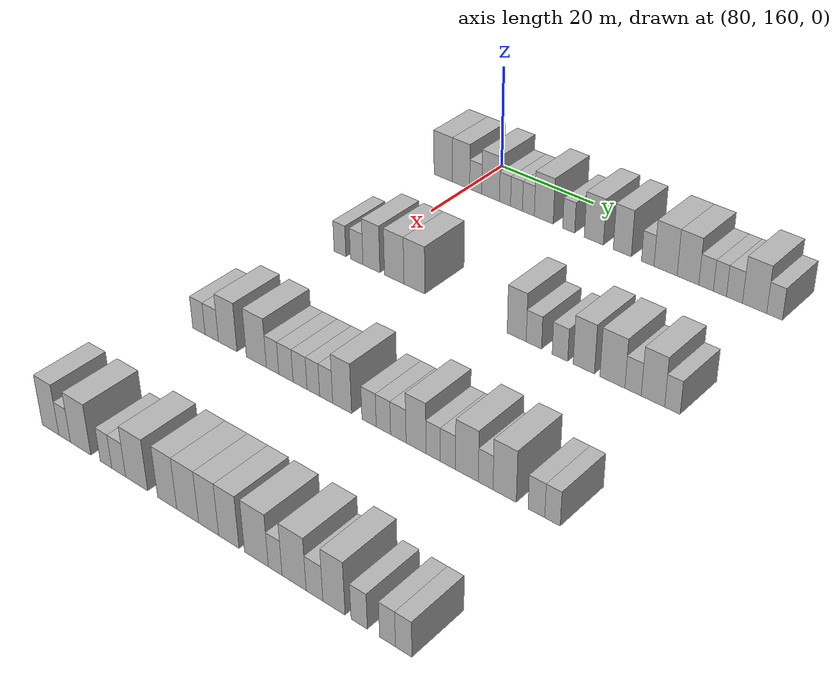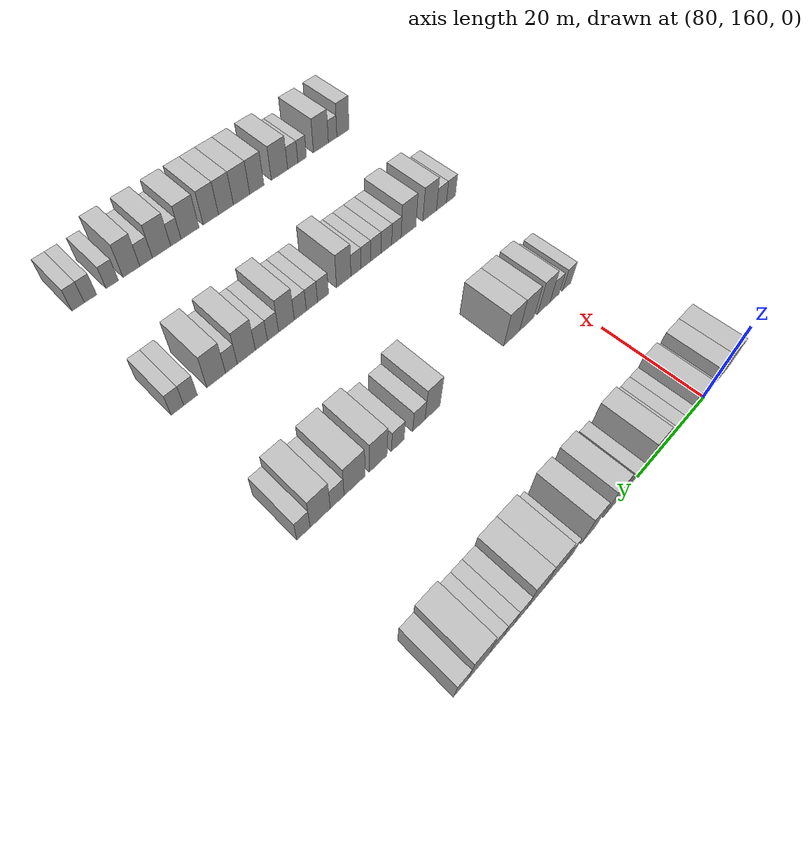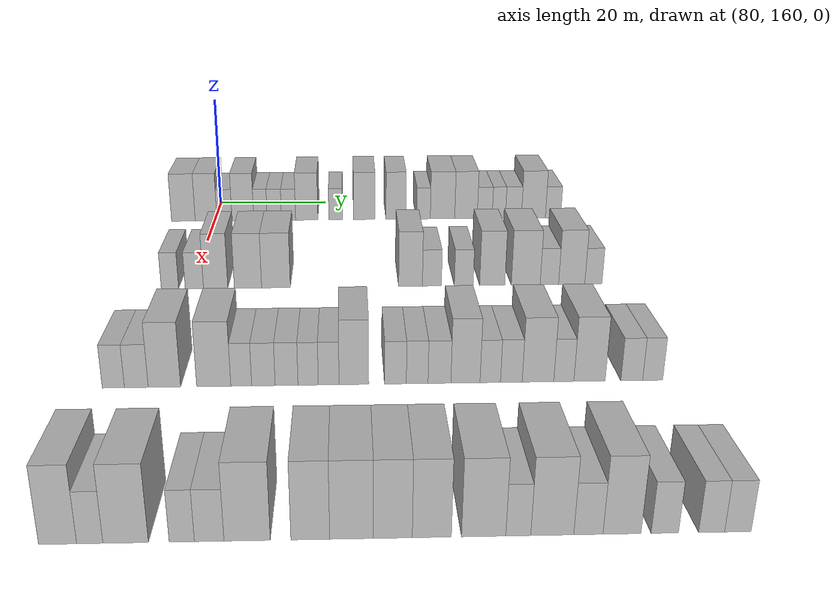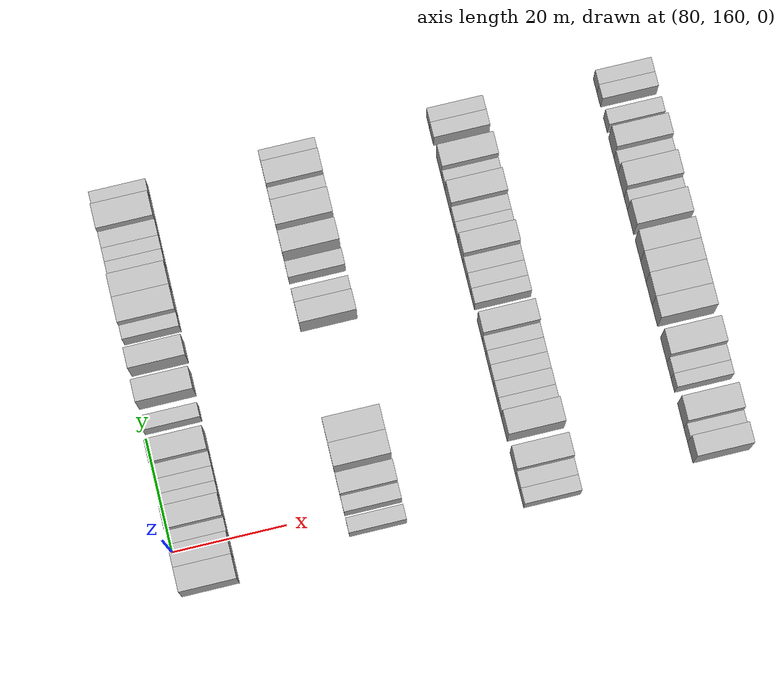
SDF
<sdf version="1.6">
 <world name="default">
  <model name="building_597">
   <static>1</static>
   <pose>85.0000 154.3414 0 0.000000 0.000000 0.000000</pose>
   <link name="link">
    <pose>0 0 4.50 0 0 0</pose>
    <collision name="collision"><geometry><box><size>10.0000 4.2786 9.0000</size></box></geometry></collision>
    <visual name="visual">
     <cast_shadows>0</cast_shadows>
     <geometry><box><size>10.0000 4.2786 9.0000</size></box></geometry>
     <material>
      <script>
       <uri>model://HANNAS_wall/materials/scripts</uri>
       <uri>model://HANNAS_wall/materials/textures</uri>
       <name>vrc/HANNAS_wall</name>
      </script>
     </material>
    </visual>
   </link>
  </model>
  <model name="building_598">
   <static>1</static>
   <pose>85.0000 158.4468 0 0.000000 0.000000 0.000000</pose>
   <link name="link">
    <pose>0 0 4.50 0 0 0</pose>
    <collision name="collision"><geometry><box><size>10.0000 3.9324 9.0000</size></box></geometry></collision>
    <visual name="visual">
     <cast_shadows>0</cast_shadows>
     <geometry><box><size>10.0000 3.9324 9.0000</size></box></geometry>
     <material>
      <script>
       <uri>model://HANNAS_wall/materials/scripts</uri>
       <uri>model://HANNAS_wall/materials/textures</uri>
       <name>vrc/HANNAS_wall</name>
      </script>
     </material>
    </visual>
   </link>
  </model>
  <model name="building_599">
   <static>1</static>
   <pose>85.0000 161.7766 0 0.000000 0.000000 0.000000</pose>
   <link name="link">
    <pose>0 0 3.00 0 0 0</pose>
    <collision name="collision"><geometry><box><size>10.0000 2.7272 6.0000</size></box></geometry></collision>
    <visual name="visual">
     <cast_shadows>0</cast_shadows>
     <geometry><box><size>10.0000 2.7272 6.0000</size></box></geometry>
     <material>
      <script>
       <uri>model://HANNAS_wall/materials/scripts</uri>
       <uri>model://HANNAS_wall/materials/textures</uri>
       <name>vrc/HANNAS_wall</name>
      </script>
     </material>
    </visual>
   </link>
  </model>
  <model name="building_600">
   <static>1</static>
   <pose>85.0000 165.1056 0 0.000000 0.000000 0.000000</pose>
   <link name="link">
    <pose>0 0 4.50 0 0 0</pose>
    <collision name="collision"><geometry><box><size>10.0000 3.9307 9.0000</size></box></geometry></collision>
    <visual name="visual">
     <cast_shadows>0</cast_shadows>
     <geometry><box><size>10.0000 3.9307 9.0000</size></box></geometry>
     <material>
      <script>
       <uri>model://HANNAS_wall/materials/scripts</uri>
       <uri>model://HANNAS_wall/materials/textures</uri>
       <name>vrc/HANNAS_wall</name>
      </script>
     </material>
    </visual>
   </link>
  </model>
  <model name="building_601">
   <static>1</static>
   <pose>85.0000 168.2970 0 0.000000 0.000000 0.000000</pose>
   <link name="link">
    <pose>0 0 3.00 0 0 0</pose>
    <collision name="collision"><geometry><box><size>10.0000 2.4523 6.0000</size></box></geometry></collision>
    <visual name="visual">
     <cast_shadows>0</cast_shadows>
     <geometry><box><size>10.0000 2.4523 6.0000</size></box></geometry>
     <material>
      <script>
       <uri>model://HANNAS_wall/materials/scripts</uri>
       <uri>model://HANNAS_wall/materials/textures</uri>
       <name>vrc/HANNAS_wall</name>
      </script>
     </material>
    </visual>
   </link>
  </model>
  <model name="building_602">
   <static>1</static>
   <pose>85.0000 170.8215 0 0.000000 0.000000 0.000000</pose>
   <link name="link">
    <pose>0 0 3.00 0 0 0</pose>
    <collision name="collision"><geometry><box><size>10.0000 2.5967 6.0000</size></box></geometry></collision>
    <visual name="visual">
     <cast_shadows>0</cast_shadows>
     <geometry><box><size>10.0000 2.5967 6.0000</size></box></geometry>
     <material>
      <script>
       <uri>model://HANNAS_wall/materials/scripts</uri>
       <uri>model://HANNAS_wall/materials/textures</uri>
       <name>vrc/HANNAS_wall</name>
      </script>
     </material>
    </visual>
   </link>
  </model>
  <model name="building_603">
   <static>1</static>
   <pose>85.0000 173.4061 0 0.000000 0.000000 0.000000</pose>
   <link name="link">
    <pose>0 0 3.00 0 0 0</pose>
    <collision name="collision"><geometry><box><size>10.0000 2.5726 6.0000</size></box></geometry></collision>
    <visual name="visual">
     <cast_shadows>0</cast_shadows>
     <geometry><box><size>10.0000 2.5726 6.0000</size></box></geometry>
     <material>
      <script>
       <uri>model://HANNAS_wall/materials/scripts</uri>
       <uri>model://HANNAS_wall/materials/textures</uri>
       <name>vrc/HANNAS_wall</name>
      </script>
     </material>
    </visual>
   </link>
  </model>
  <model name="building_604">
   <static>1</static>
   <pose>85.0000 176.7185 0 0.000000 0.000000 0.000000</pose>
   <link name="link">
    <pose>0 0 4.50 0 0 0</pose>
    <collision name="collision"><geometry><box><size>10.0000 4.0522 9.0000</size></box></geometry></collision>
    <visual name="visual">
     <cast_shadows>0</cast_shadows>
     <geometry><box><size>10.0000 4.0522 9.0000</size></box></geometry>
     <material>
      <script>
       <uri>model://HANNAS_wall/materials/scripts</uri>
       <uri>model://HANNAS_wall/materials/textures</uri>
       <name>vrc/HANNAS_wall</name>
      </script>
     </material>
    </visual>
   </link>
  </model>
  <model name="building_605">
   <static>1</static>
   <pose>85.0000 181.9972 0 0.000000 0.000000 0.000000</pose>
   <link name="link">
    <pose>0 0 3.00 0 0 0</pose>
    <collision name="collision"><geometry><box><size>10.0000 2.5053 6.0000</size></box></geometry></collision>
    <visual name="visual">
     <cast_shadows>0</cast_shadows>
     <geometry><box><size>10.0000 2.5053 6.0000</size></box></geometry>
     <material>
      <script>
       <uri>model://HANNAS_wall/materials/scripts</uri>
       <uri>model://HANNAS_wall/materials/textures</uri>
       <name>vrc/HANNAS_wall</name>
      </script>
     </material>
    </visual>
   </link>
  </model>
  <model name="building_606">
   <static>1</static>
   <pose>85.0000 187.2097 0 0.000000 0.000000 0.000000</pose>
   <link name="link">
    <pose>0 0 4.50 0 0 0</pose>
    <collision name="collision"><geometry><box><size>10.0000 3.9197 9.0000</size></box></geometry></collision>
    <visual name="visual">
     <cast_shadows>0</cast_shadows>
     <geometry><box><size>10.0000 3.9197 9.0000</size></box></geometry>
     <material>
      <script>
       <uri>model://HANNAS_wall/materials/scripts</uri>
       <uri>model://HANNAS_wall/materials/textures</uri>
       <name>vrc/HANNAS_wall</name>
      </script>
     </material>
    </visual>
   </link>
  </model>
  <model name="building_607">
   <static>1</static>
   <pose>85.0000 192.9871 0 0.000000 0.000000 0.000000</pose>
   <link name="link">
    <pose>0 0 4.50 0 0 0</pose>
    <collision name="collision"><geometry><box><size>10.0000 3.6351 9.0000</size></box></geometry></collision>
    <visual name="visual">
     <cast_shadows>0</cast_shadows>
     <geometry><box><size>10.0000 3.6351 9.0000</size></box></geometry>
     <material>
      <script>
       <uri>model://HANNAS_wall/materials/scripts</uri>
       <uri>model://HANNAS_wall/materials/textures</uri>
       <name>vrc/HANNAS_wall</name>
      </script>
     </material>
    </visual>
   </link>
  </model>
  <model name="building_608">
   <static>1</static>
   <pose>85.0000 198.0442 0 0.000000 0.000000 0.000000</pose>
   <link name="link">
    <pose>0 0 3.00 0 0 0</pose>
    <collision name="collision"><geometry><box><size>10.0000 2.4791 6.0000</size></box></geometry></collision>
    <visual name="visual">
     <cast_shadows>0</cast_shadows>
     <geometry><box><size>10.0000 2.4791 6.0000</size></box></geometry>
     <material>
      <script>
       <uri>model://HANNAS_wall/materials/scripts</uri>
       <uri>model://HANNAS_wall/materials/textures</uri>
       <name>vrc/HANNAS_wall</name>
      </script>
     </material>
    </visual>
   </link>
  </model>
  <model name="building_609">
   <static>1</static>
   <pose>85.0000 201.5215 0 0.000000 0.000000 0.000000</pose>
   <link name="link">
    <pose>0 0 4.50 0 0 0</pose>
    <collision name="collision"><geometry><box><size>10.0000 4.4755 9.0000</size></box></geometry></collision>
    <visual name="visual">
     <cast_shadows>0</cast_shadows>
     <geometry><box><size>10.0000 4.4755 9.0000</size></box></geometry>
     <material>
      <script>
       <uri>model://HANNAS_wall/materials/scripts</uri>
       <uri>model://HANNAS_wall/materials/textures</uri>
       <name>vrc/HANNAS_wall</name>
      </script>
     </material>
    </visual>
   </link>
  </model>
  <model name="building_610">
   <static>1</static>
   <pose>85.0000 205.8297 0 0.000000 0.000000 0.000000</pose>
   <link name="link">
    <pose>0 0 4.50 0 0 0</pose>
    <collision name="collision"><geometry><box><size>10.0000 4.1408 9.0000</size></box></geometry></collision>
    <visual name="visual">
     <cast_shadows>0</cast_shadows>
     <geometry><box><size>10.0000 4.1408 9.0000</size></box></geometry>
     <material>
      <script>
       <uri>model://HANNAS_wall/materials/scripts</uri>
       <uri>model://HANNAS_wall/materials/textures</uri>
       <name>vrc/HANNAS_wall</name>
      </script>
     </material>
    </visual>
   </link>
  </model>
  <model name="building_611">
   <static>1</static>
   <pose>85.0000 209.2731 0 0.000000 0.000000 0.000000</pose>
   <link name="link">
    <pose>0 0 3.00 0 0 0</pose>
    <collision name="collision"><geometry><box><size>10.0000 2.7460 6.0000</size></box></geometry></collision>
    <visual name="visual">
     <cast_shadows>0</cast_shadows>
     <geometry><box><size>10.0000 2.7460 6.0000</size></box></geometry>
     <material>
      <script>
       <uri>model://HANNAS_wall/materials/scripts</uri>
       <uri>model://HANNAS_wall/materials/textures</uri>
       <name>vrc/HANNAS_wall</name>
      </script>
     </material>
    </visual>
   </link>
  </model>
  <model name="building_612">
   <static>1</static>
   <pose>85.0000 211.8647 0 0.000000 0.000000 0.000000</pose>
   <link name="link">
    <pose>0 0 3.00 0 0 0</pose>
    <collision name="collision"><geometry><box><size>10.0000 2.4372 6.0000</size></box></geometry></collision>
    <visual name="visual">
     <cast_shadows>0</cast_shadows>
     <geometry><box><size>10.0000 2.4372 6.0000</size></box></geometry>
     <material>
      <script>
       <uri>model://HANNAS_wall/materials/scripts</uri>
       <uri>model://HANNAS_wall/materials/textures</uri>
       <name>vrc/HANNAS_wall</name>
      </script>
     </material>
    </visual>
   </link>
  </model>
  <model name="building_613">
   <static>1</static>
   <pose>85.0000 214.5510 0 0.000000 0.000000 0.000000</pose>
   <link name="link">
    <pose>0 0 3.00 0 0 0</pose>
    <collision name="collision"><geometry><box><size>10.0000 2.9353 6.0000</size></box></geometry></collision>
    <visual name="visual">
     <cast_shadows>0</cast_shadows>
     <geometry><box><size>10.0000 2.9353 6.0000</size></box></geometry>
     <material>
      <script>
       <uri>model://HANNAS_wall/materials/scripts</uri>
       <uri>model://HANNAS_wall/materials/textures</uri>
       <name>vrc/HANNAS_wall</name>
      </script>
     </material>
    </visual>
   </link>
  </model>
  <model name="building_614">
   <static>1</static>
   <pose>85.0000 218.2281 0 0.000000 0.000000 0.000000</pose>
   <link name="link">
    <pose>0 0 4.50 0 0 0</pose>
    <collision name="collision"><geometry><box><size>10.0000 4.4190 9.0000</size></box></geometry></collision>
    <visual name="visual">
     <cast_shadows>0</cast_shadows>
     <geometry><box><size>10.0000 4.4190 9.0000</size></box></geometry>
     <material>
      <script>
       <uri>model://HANNAS_wall/materials/scripts</uri>
       <uri>model://HANNAS_wall/materials/textures</uri>
       <name>vrc/HANNAS_wall</name>
      </script>
     </material>
    </visual>
   </link>
  </model>
  <model name="building_615">
   <static>1</static>
   <pose>85.0000 221.8478 0 0.000000 0.000000 0.000000</pose>
   <link name="link">
    <pose>0 0 3.00 0 0 0</pose>
    <collision name="collision"><geometry><box><size>10.0000 2.8203 6.0000</size></box></geometry></collision>
    <visual name="visual">
     <cast_shadows>0</cast_shadows>
     <geometry><box><size>10.0000 2.8203 6.0000</size></box></geometry>
     <material>
      <script>
       <uri>model://HANNAS_wall/materials/scripts</uri>
       <uri>model://HANNAS_wall/materials/textures</uri>
       <name>vrc/HANNAS_wall</name>
      </script>
     </material>
    </visual>
   </link>
  </model>
  <model name="building_819">
   <static>1</static>
   <pose>115.0000 156.8340 0 0.000000 0.000000 0.000000</pose>
   <link name="link">
    <pose>0 0 3.00 0 0 0</pose>
    <collision name="collision"><geometry><box><size>10.0000 2.6521 6.0000</size></box></geometry></collision>
    <visual name="visual">
     <cast_shadows>0</cast_shadows>
     <geometry><box><size>10.0000 2.6521 6.0000</size></box></geometry>
     <material>
      <script>
       <uri>model://HANNAS_wall/materials/scripts</uri>
       <uri>model://HANNAS_wall/materials/textures</uri>
       <name>vrc/HANNAS_wall</name>
      </script>
     </material>
    </visual>
   </link>
  </model>
  <model name="building_820">
   <static>1</static>
   <pose>115.0000 160.5585 0 0.000000 0.000000 0.000000</pose>
   <link name="link">
    <pose>0 0 3.00 0 0 0</pose>
    <collision name="collision"><geometry><box><size>10.0000 2.7969 6.0000</size></box></geometry></collision>
    <visual name="visual">
     <cast_shadows>0</cast_shadows>
     <geometry><box><size>10.0000 2.7969 6.0000</size></box></geometry>
     <material>
      <script>
       <uri>model://HANNAS_wall/materials/scripts</uri>
       <uri>model://HANNAS_wall/materials/textures</uri>
       <name>vrc/HANNAS_wall</name>
      </script>
     </material>
    </visual>
   </link>
  </model>
  <model name="building_821">
   <static>1</static>
   <pose>115.0000 163.8194 0 0.000000 0.000000 0.000000</pose>
   <link name="link">
    <pose>0 0 4.50 0 0 0</pose>
    <collision name="collision"><geometry><box><size>10.0000 3.7249 9.0000</size></box></geometry></collision>
    <visual name="visual">
     <cast_shadows>0</cast_shadows>
     <geometry><box><size>10.0000 3.7249 9.0000</size></box></geometry>
     <material>
      <script>
       <uri>model://HANNAS_wall/materials/scripts</uri>
       <uri>model://HANNAS_wall/materials/textures</uri>
       <name>vrc/HANNAS_wall</name>
      </script>
     </material>
    </visual>
   </link>
  </model>
  <model name="building_822">
   <static>1</static>
   <pose>115.0000 168.7721 0 0.000000 0.000000 0.000000</pose>
   <link name="link">
    <pose>0 0 4.50 0 0 0</pose>
    <collision name="collision"><geometry><box><size>10.0000 4.1805 9.0000</size></box></geometry></collision>
    <visual name="visual">
     <cast_shadows>0</cast_shadows>
     <geometry><box><size>10.0000 4.1805 9.0000</size></box></geometry>
     <material>
      <script>
       <uri>model://HANNAS_wall/materials/scripts</uri>
       <uri>model://HANNAS_wall/materials/textures</uri>
       <name>vrc/HANNAS_wall</name>
      </script>
     </material>
    </visual>
   </link>
  </model>
  <model name="building_823">
   <static>1</static>
   <pose>115.0000 173.0686 0 0.000000 0.000000 0.000000</pose>
   <link name="link">
    <pose>0 0 4.50 0 0 0</pose>
    <collision name="collision"><geometry><box><size>10.0000 4.4125 9.0000</size></box></geometry></collision>
    <visual name="visual">
     <cast_shadows>0</cast_shadows>
     <geometry><box><size>10.0000 4.4125 9.0000</size></box></geometry>
     <material>
      <script>
       <uri>model://HANNAS_wall/materials/scripts</uri>
       <uri>model://HANNAS_wall/materials/textures</uri>
       <name>vrc/HANNAS_wall</name>
      </script>
     </material>
    </visual>
   </link>
  </model>
  <model name="building_824">
   <static>1</static>
   <pose>115.0000 193.7967 0 0.000000 0.000000 0.000000</pose>
   <link name="link">
    <pose>0 0 4.50 0 0 0</pose>
    <collision name="collision"><geometry><box><size>10.0000 3.6812 9.0000</size></box></geometry></collision>
    <visual name="visual">
     <cast_shadows>0</cast_shadows>
     <geometry><box><size>10.0000 3.6812 9.0000</size></box></geometry>
     <material>
      <script>
       <uri>model://HANNAS_wall/materials/scripts</uri>
       <uri>model://HANNAS_wall/materials/textures</uri>
       <name>vrc/HANNAS_wall</name>
      </script>
     </material>
    </visual>
   </link>
  </model>
  <model name="building_825">
   <static>1</static>
   <pose>115.0000 197.1115 0 0.000000 0.000000 0.000000</pose>
   <link name="link">
    <pose>0 0 3.00 0 0 0</pose>
    <collision name="collision"><geometry><box><size>10.0000 2.9484 6.0000</size></box></geometry></collision>
    <visual name="visual">
     <cast_shadows>0</cast_shadows>
     <geometry><box><size>10.0000 2.9484 6.0000</size></box></geometry>
     <material>
      <script>
       <uri>model://HANNAS_wall/materials/scripts</uri>
       <uri>model://HANNAS_wall/materials/textures</uri>
       <name>vrc/HANNAS_wall</name>
      </script>
     </material>
    </visual>
   </link>
  </model>
  <model name="building_826">
   <static>1</static>
   <pose>115.0000 202.0462 0 0.000000 0.000000 0.000000</pose>
   <link name="link">
    <pose>0 0 3.00 0 0 0</pose>
    <collision name="collision"><geometry><box><size>10.0000 2.9211 6.0000</size></box></geometry></collision>
    <visual name="visual">
     <cast_shadows>0</cast_shadows>
     <geometry><box><size>10.0000 2.9211 6.0000</size></box></geometry>
     <material>
      <script>
       <uri>model://HANNAS_wall/materials/scripts</uri>
       <uri>model://HANNAS_wall/materials/textures</uri>
       <name>vrc/HANNAS_wall</name>
      </script>
     </material>
    </visual>
   </link>
  </model>
  <model name="building_827">
   <static>1</static>
   <pose>115.0000 206.4669 0 0.000000 0.000000 0.000000</pose>
   <link name="link">
    <pose>0 0 4.50 0 0 0</pose>
    <collision name="collision"><geometry><box><size>10.0000 3.9203 9.0000</size></box></geometry></collision>
    <visual name="visual">
     <cast_shadows>0</cast_shadows>
     <geometry><box><size>10.0000 3.9203 9.0000</size></box></geometry>
     <material>
      <script>
       <uri>model://HANNAS_wall/materials/scripts</uri>
       <uri>model://HANNAS_wall/materials/textures</uri>
       <name>vrc/HANNAS_wall</name>
      </script>
     </material>
    </visual>
   </link>
  </model>
  <model name="building_828">
   <static>1</static>
   <pose>115.0000 211.6727 0 0.000000 0.000000 0.000000</pose>
   <link name="link">
    <pose>0 0 4.50 0 0 0</pose>
    <collision name="collision"><geometry><box><size>10.0000 4.4913 9.0000</size></box></geometry></collision>
    <visual name="visual">
     <cast_shadows>0</cast_shadows>
     <geometry><box><size>10.0000 4.4913 9.0000</size></box></geometry>
     <material>
      <script>
       <uri>model://HANNAS_wall/materials/scripts</uri>
       <uri>model://HANNAS_wall/materials/textures</uri>
       <name>vrc/HANNAS_wall</name>
      </script>
     </material>
    </visual>
   </link>
  </model>
  <model name="building_829">
   <static>1</static>
   <pose>115.0000 215.3553 0 0.000000 0.000000 0.000000</pose>
   <link name="link">
    <pose>0 0 3.00 0 0 0</pose>
    <collision name="collision"><geometry><box><size>10.0000 2.8739 6.0000</size></box></geometry></collision>
    <visual name="visual">
     <cast_shadows>0</cast_shadows>
     <geometry><box><size>10.0000 2.8739 6.0000</size></box></geometry>
     <material>
      <script>
       <uri>model://HANNAS_wall/materials/scripts</uri>
       <uri>model://HANNAS_wall/materials/textures</uri>
       <name>vrc/HANNAS_wall</name>
      </script>
     </material>
    </visual>
   </link>
  </model>
  <model name="building_830">
   <static>1</static>
   <pose>115.0000 218.8365 0 0.000000 0.000000 0.000000</pose>
   <link name="link">
    <pose>0 0 4.50 0 0 0</pose>
    <collision name="collision"><geometry><box><size>10.0000 4.0886 9.0000</size></box></geometry></collision>
    <visual name="visual">
     <cast_shadows>0</cast_shadows>
     <geometry><box><size>10.0000 4.0886 9.0000</size></box></geometry>
     <material>
      <script>
       <uri>model://HANNAS_wall/materials/scripts</uri>
       <uri>model://HANNAS_wall/materials/textures</uri>
       <name>vrc/HANNAS_wall</name>
      </script>
     </material>
    </visual>
   </link>
  </model>
  <model name="building_831">
   <static>1</static>
   <pose>115.0000 222.2176 0 0.000000 0.000000 0.000000</pose>
   <link name="link">
    <pose>0 0 3.00 0 0 0</pose>
    <collision name="collision"><geometry><box><size>10.0000 2.6735 6.0000</size></box></geometry></collision>
    <visual name="visual">
     <cast_shadows>0</cast_shadows>
     <geometry><box><size>10.0000 2.6735 6.0000</size></box></geometry>
     <material>
      <script>
       <uri>model://HANNAS_wall/materials/scripts</uri>
       <uri>model://HANNAS_wall/materials/textures</uri>
       <name>vrc/HANNAS_wall</name>
      </script>
     </material>
    </visual>
   </link>
  </model>
  <model name="building_1039">
   <static>1</static>
   <pose>145.0000 154.7068 0 0.000000 0.000000 0.000000</pose>
   <link name="link">
    <pose>0 0 3.00 0 0 0</pose>
    <collision name="collision"><geometry><box><size>10.0000 2.7533 6.0000</size></box></geometry></collision>
    <visual name="visual">
     <cast_shadows>0</cast_shadows>
     <geometry><box><size>10.0000 2.7533 6.0000</size></box></geometry>
     <material>
      <script>
       <uri>model://HANNAS_wall/materials/scripts</uri>
       <uri>model://HANNAS_wall/materials/textures</uri>
       <name>vrc/HANNAS_wall</name>
      </script>
     </material>
    </visual>
   </link>
  </model>
  <model name="building_1040">
   <static>1</static>
   <pose>145.0000 157.5677 0 0.000000 0.000000 0.000000</pose>
   <link name="link">
    <pose>0 0 3.00 0 0 0</pose>
    <collision name="collision"><geometry><box><size>10.0000 2.9684 6.0000</size></box></geometry></collision>
    <visual name="visual">
     <cast_shadows>0</cast_shadows>
     <geometry><box><size>10.0000 2.9684 6.0000</size></box></geometry>
     <material>
      <script>
       <uri>model://HANNAS_wall/materials/scripts</uri>
       <uri>model://HANNAS_wall/materials/textures</uri>
       <name>vrc/HANNAS_wall</name>
      </script>
     </material>
    </visual>
   </link>
  </model>
  <model name="building_1041">
   <static>1</static>
   <pose>145.0000 161.0730 0 0.000000 0.000000 0.000000</pose>
   <link name="link">
    <pose>0 0 4.50 0 0 0</pose>
    <collision name="collision"><geometry><box><size>10.0000 4.0423 9.0000</size></box></geometry></collision>
    <visual name="visual">
     <cast_shadows>0</cast_shadows>
     <geometry><box><size>10.0000 4.0423 9.0000</size></box></geometry>
     <material>
      <script>
       <uri>model://HANNAS_wall/materials/scripts</uri>
       <uri>model://HANNAS_wall/materials/textures</uri>
       <name>vrc/HANNAS_wall</name>
      </script>
     </material>
    </visual>
   </link>
  </model>
  <model name="building_1042">
   <static>1</static>
   <pose>145.0000 167.2272 0 0.000000 0.000000 0.000000</pose>
   <link name="link">
    <pose>0 0 4.50 0 0 0</pose>
    <collision name="collision"><geometry><box><size>10.0000 4.2660 9.0000</size></box></geometry></collision>
    <visual name="visual">
     <cast_shadows>0</cast_shadows>
     <geometry><box><size>10.0000 4.2660 9.0000</size></box></geometry>
     <material>
      <script>
       <uri>model://HANNAS_wall/materials/scripts</uri>
       <uri>model://HANNAS_wall/materials/textures</uri>
       <name>vrc/HANNAS_wall</name>
      </script>
     </material>
    </visual>
   </link>
  </model>
  <model name="building_1043">
   <static>1</static>
   <pose>145.0000 170.6641 0 0.000000 0.000000 0.000000</pose>
   <link name="link">
    <pose>0 0 3.00 0 0 0</pose>
    <collision name="collision"><geometry><box><size>10.0000 2.6078 6.0000</size></box></geometry></collision>
    <visual name="visual">
     <cast_shadows>0</cast_shadows>
     <geometry><box><size>10.0000 2.6078 6.0000</size></box></geometry>
     <material>
      <script>
       <uri>model://HANNAS_wall/materials/scripts</uri>
       <uri>model://HANNAS_wall/materials/textures</uri>
       <name>vrc/HANNAS_wall</name>
      </script>
     </material>
    </visual>
   </link>
  </model>
  <model name="building_1044">
   <static>1</static>
   <pose>145.0000 173.4398 0 0.000000 0.000000 0.000000</pose>
   <link name="link">
    <pose>0 0 3.00 0 0 0</pose>
    <collision name="collision"><geometry><box><size>10.0000 2.9437 6.0000</size></box></geometry></collision>
    <visual name="visual">
     <cast_shadows>0</cast_shadows>
     <geometry><box><size>10.0000 2.9437 6.0000</size></box></geometry>
     <material>
      <script>
       <uri>model://HANNAS_wall/materials/scripts</uri>
       <uri>model://HANNAS_wall/materials/textures</uri>
       <name>vrc/HANNAS_wall</name>
      </script>
     </material>
    </visual>
   </link>
  </model>
  <model name="building_1045">
   <static>1</static>
   <pose>145.0000 176.3443 0 0.000000 0.000000 0.000000</pose>
   <link name="link">
    <pose>0 0 3.00 0 0 0</pose>
    <collision name="collision"><geometry><box><size>10.0000 2.8652 6.0000</size></box></geometry></collision>
    <visual name="visual">
     <cast_shadows>0</cast_shadows>
     <geometry><box><size>10.0000 2.8652 6.0000</size></box></geometry>
     <material>
      <script>
       <uri>model://HANNAS_wall/materials/scripts</uri>
       <uri>model://HANNAS_wall/materials/textures</uri>
       <name>vrc/HANNAS_wall</name>
      </script>
     </material>
    </visual>
   </link>
  </model>
  <model name="building_1046">
   <static>1</static>
   <pose>145.0000 179.0513 0 0.000000 0.000000 0.000000</pose>
   <link name="link">
    <pose>0 0 3.00 0 0 0</pose>
    <collision name="collision"><geometry><box><size>10.0000 2.5489 6.0000</size></box></geometry></collision>
    <visual name="visual">
     <cast_shadows>0</cast_shadows>
     <geometry><box><size>10.0000 2.5489 6.0000</size></box></geometry>
     <material>
      <script>
       <uri>model://HANNAS_wall/materials/scripts</uri>
       <uri>model://HANNAS_wall/materials/textures</uri>
       <name>vrc/HANNAS_wall</name>
      </script>
     </material>
    </visual>
   </link>
  </model>
  <model name="building_1047">
   <static>1</static>
   <pose>145.0000 181.6308 0 0.000000 0.000000 0.000000</pose>
   <link name="link">
    <pose>0 0 3.00 0 0 0</pose>
    <collision name="collision"><geometry><box><size>10.0000 2.6102 6.0000</size></box></geometry></collision>
    <visual name="visual">
     <cast_shadows>0</cast_shadows>
     <geometry><box><size>10.0000 2.6102 6.0000</size></box></geometry>
     <material>
      <script>
       <uri>model://HANNAS_wall/materials/scripts</uri>
       <uri>model://HANNAS_wall/materials/textures</uri>
       <name>vrc/HANNAS_wall</name>
      </script>
     </material>
    </visual>
   </link>
  </model>
  <model name="building_1048">
   <static>1</static>
   <pose>145.0000 184.8003 0 0.000000 0.000000 0.000000</pose>
   <link name="link">
    <pose>0 0 4.50 0 0 0</pose>
    <collision name="collision"><geometry><box><size>10.0000 3.7288 9.0000</size></box></geometry></collision>
    <visual name="visual">
     <cast_shadows>0</cast_shadows>
     <geometry><box><size>10.0000 3.7288 9.0000</size></box></geometry>
     <material>
      <script>
       <uri>model://HANNAS_wall/materials/scripts</uri>
       <uri>model://HANNAS_wall/materials/textures</uri>
       <name>vrc/HANNAS_wall</name>
      </script>
     </material>
    </visual>
   </link>
  </model>
  <model name="building_1049">
   <static>1</static>
   <pose>145.0000 190.0351 0 0.000000 0.000000 0.000000</pose>
   <link name="link">
    <pose>0 0 3.00 0 0 0</pose>
    <collision name="collision"><geometry><box><size>10.0000 2.7408 6.0000</size></box></geometry></collision>
    <visual name="visual">
     <cast_shadows>0</cast_shadows>
     <geometry><box><size>10.0000 2.7408 6.0000</size></box></geometry>
     <material>
      <script>
       <uri>model://HANNAS_wall/materials/scripts</uri>
       <uri>model://HANNAS_wall/materials/textures</uri>
       <name>vrc/HANNAS_wall</name>
      </script>
     </material>
    </visual>
   </link>
  </model>
  <model name="building_1050">
   <static>1</static>
   <pose>145.0000 192.7731 0 0.000000 0.000000 0.000000</pose>
   <link name="link">
    <pose>0 0 3.00 0 0 0</pose>
    <collision name="collision"><geometry><box><size>10.0000 2.7352 6.0000</size></box></geometry></collision>
    <visual name="visual">
     <cast_shadows>0</cast_shadows>
     <geometry><box><size>10.0000 2.7352 6.0000</size></box></geometry>
     <material>
      <script>
       <uri>model://HANNAS_wall/materials/scripts</uri>
       <uri>model://HANNAS_wall/materials/textures</uri>
       <name>vrc/HANNAS_wall</name>
      </script>
     </material>
    </visual>
   </link>
  </model>
  <model name="building_1051">
   <static>1</static>
   <pose>145.0000 195.5887 0 0.000000 0.000000 0.000000</pose>
   <link name="link">
    <pose>0 0 3.00 0 0 0</pose>
    <collision name="collision"><geometry><box><size>10.0000 2.8960 6.0000</size></box></geometry></collision>
    <visual name="visual">
     <cast_shadows>0</cast_shadows>
     <geometry><box><size>10.0000 2.8960 6.0000</size></box></geometry>
     <material>
      <script>
       <uri>model://HANNAS_wall/materials/scripts</uri>
       <uri>model://HANNAS_wall/materials/textures</uri>
       <name>vrc/HANNAS_wall</name>
      </script>
     </material>
    </visual>
   </link>
  </model>
  <model name="building_1052">
   <static>1</static>
   <pose>145.0000 198.8852 0 0.000000 0.000000 0.000000</pose>
   <link name="link">
    <pose>0 0 4.50 0 0 0</pose>
    <collision name="collision"><geometry><box><size>10.0000 3.6970 9.0000</size></box></geometry></collision>
    <visual name="visual">
     <cast_shadows>0</cast_shadows>
     <geometry><box><size>10.0000 3.6970 9.0000</size></box></geometry>
     <material>
      <script>
       <uri>model://HANNAS_wall/materials/scripts</uri>
       <uri>model://HANNAS_wall/materials/textures</uri>
       <name>vrc/HANNAS_wall</name>
      </script>
     </material>
    </visual>
   </link>
  </model>
  <model name="building_1053">
   <static>1</static>
   <pose>145.0000 202.0282 0 0.000000 0.000000 0.000000</pose>
   <link name="link">
    <pose>0 0 3.00 0 0 0</pose>
    <collision name="collision"><geometry><box><size>10.0000 2.5890 6.0000</size></box></geometry></collision>
    <visual name="visual">
     <cast_shadows>0</cast_shadows>
     <geometry><box><size>10.0000 2.5890 6.0000</size></box></geometry>
     <material>
      <script>
       <uri>model://HANNAS_wall/materials/scripts</uri>
       <uri>model://HANNAS_wall/materials/textures</uri>
       <name>vrc/HANNAS_wall</name>
      </script>
     </material>
    </visual>
   </link>
  </model>
  <model name="building_1054">
   <static>1</static>
   <pose>145.0000 204.7009 0 0.000000 0.000000 0.000000</pose>
   <link name="link">
    <pose>0 0 3.00 0 0 0</pose>
    <collision name="collision"><geometry><box><size>10.0000 2.7563 6.0000</size></box></geometry></collision>
    <visual name="visual">
     <cast_shadows>0</cast_shadows>
     <geometry><box><size>10.0000 2.7563 6.0000</size></box></geometry>
     <material>
      <script>
       <uri>model://HANNAS_wall/materials/scripts</uri>
       <uri>model://HANNAS_wall/materials/textures</uri>
       <name>vrc/HANNAS_wall</name>
      </script>
     </material>
    </visual>
   </link>
  </model>
  <model name="building_1055">
   <static>1</static>
   <pose>145.0000 208.0891 0 0.000000 0.000000 0.000000</pose>
   <link name="link">
    <pose>0 0 4.50 0 0 0</pose>
    <collision name="collision"><geometry><box><size>10.0000 4.0202 9.0000</size></box></geometry></collision>
    <visual name="visual">
     <cast_shadows>0</cast_shadows>
     <geometry><box><size>10.0000 4.0202 9.0000</size></box></geometry>
     <material>
      <script>
       <uri>model://HANNAS_wall/materials/scripts</uri>
       <uri>model://HANNAS_wall/materials/textures</uri>
       <name>vrc/HANNAS_wall</name>
      </script>
     </material>
    </visual>
   </link>
  </model>
  <model name="building_1056">
   <static>1</static>
   <pose>145.0000 211.3795 0 0.000000 0.000000 0.000000</pose>
   <link name="link">
    <pose>0 0 3.00 0 0 0</pose>
    <collision name="collision"><geometry><box><size>10.0000 2.5605 6.0000</size></box></geometry></collision>
    <visual name="visual">
     <cast_shadows>0</cast_shadows>
     <geometry><box><size>10.0000 2.5605 6.0000</size></box></geometry>
     <material>
      <script>
       <uri>model://HANNAS_wall/materials/scripts</uri>
       <uri>model://HANNAS_wall/materials/textures</uri>
       <name>vrc/HANNAS_wall</name>
      </script>
     </material>
    </visual>
   </link>
  </model>
  <model name="building_1057">
   <static>1</static>
   <pose>145.0000 214.6517 0 0.000000 0.000000 0.000000</pose>
   <link name="link">
    <pose>0 0 4.50 0 0 0</pose>
    <collision name="collision"><geometry><box><size>10.0000 3.9838 9.0000</size></box></geometry></collision>
    <visual name="visual">
     <cast_shadows>0</cast_shadows>
     <geometry><box><size>10.0000 3.9838 9.0000</size></box></geometry>
     <material>
      <script>
       <uri>model://HANNAS_wall/materials/scripts</uri>
       <uri>model://HANNAS_wall/materials/textures</uri>
       <name>vrc/HANNAS_wall</name>
      </script>
     </material>
    </visual>
   </link>
  </model>
  <model name="building_1058">
   <static>1</static>
   <pose>145.0000 220.0369 0 0.000000 0.000000 0.000000</pose>
   <link name="link">
    <pose>0 0 3.00 0 0 0</pose>
    <collision name="collision"><geometry><box><size>10.0000 2.7867 6.0000</size></box></geometry></collision>
    <visual name="visual">
     <cast_shadows>0</cast_shadows>
     <geometry><box><size>10.0000 2.7867 6.0000</size></box></geometry>
     <material>
      <script>
       <uri>model://HANNAS_wall/materials/scripts</uri>
       <uri>model://HANNAS_wall/materials/textures</uri>
       <name>vrc/HANNAS_wall</name>
      </script>
     </material>
    </visual>
   </link>
  </model>
  <model name="building_1059">
   <static>1</static>
   <pose>145.0000 222.7111 0 0.000000 0.000000 0.000000</pose>
   <link name="link">
    <pose>0 0 3.00 0 0 0</pose>
    <collision name="collision"><geometry><box><size>10.0000 2.5617 6.0000</size></box></geometry></collision>
    <visual name="visual">
     <cast_shadows>0</cast_shadows>
     <geometry><box><size>10.0000 2.5617 6.0000</size></box></geometry>
     <material>
      <script>
       <uri>model://HANNAS_wall/materials/scripts</uri>
       <uri>model://HANNAS_wall/materials/textures</uri>
       <name>vrc/HANNAS_wall</name>
      </script>
     </material>
    </visual>
   </link>
  </model>
  <model name="building_1280">
   <static>1</static>
   <pose>175.0000 155.8581 0 0.000000 0.000000 0.000000</pose>
   <link name="link">
    <pose>0 0 4.50 0 0 0</pose>
    <collision name="collision"><geometry><box><size>10.0000 3.6627 9.0000</size></box></geometry></collision>
    <visual name="visual">
     <cast_shadows>0</cast_shadows>
     <geometry><box><size>10.0000 3.6627 9.0000</size></box></geometry>
     <material>
      <script>
       <uri>model://HANNAS_wall/materials/scripts</uri>
       <uri>model://HANNAS_wall/materials/textures</uri>
       <name>vrc/HANNAS_wall</name>
      </script>
     </material>
    </visual>
   </link>
  </model>
  <model name="building_1281">
   <static>1</static>
   <pose>175.0000 158.9531 0 0.000000 0.000000 0.000000</pose>
   <link name="link">
    <pose>0 0 3.00 0 0 0</pose>
    <collision name="collision"><geometry><box><size>10.0000 2.5272 6.0000</size></box></geometry></collision>
    <visual name="visual">
     <cast_shadows>0</cast_shadows>
     <geometry><box><size>10.0000 2.5272 6.0000</size></box></geometry>
     <material>
      <script>
       <uri>model://HANNAS_wall/materials/scripts</uri>
       <uri>model://HANNAS_wall/materials/textures</uri>
       <name>vrc/HANNAS_wall</name>
      </script>
     </material>
    </visual>
   </link>
  </model>
  <model name="building_1282">
   <static>1</static>
   <pose>175.0000 162.4107 0 0.000000 0.000000 0.000000</pose>
   <link name="link">
    <pose>0 0 4.50 0 0 0</pose>
    <collision name="collision"><geometry><box><size>10.0000 4.3881 9.0000</size></box></geometry></collision>
    <visual name="visual">
     <cast_shadows>0</cast_shadows>
     <geometry><box><size>10.0000 4.3881 9.0000</size></box></geometry>
     <material>
      <script>
       <uri>model://HANNAS_wall/materials/scripts</uri>
       <uri>model://HANNAS_wall/materials/textures</uri>
       <name>vrc/HANNAS_wall</name>
      </script>
     </material>
    </visual>
   </link>
  </model>
  <model name="building_1283">
   <static>1</static>
   <pose>175.0000 167.8240 0 0.000000 0.000000 0.000000</pose>
   <link name="link">
    <pose>0 0 3.00 0 0 0</pose>
    <collision name="collision"><geometry><box><size>10.0000 2.4386 6.0000</size></box></geometry></collision>
    <visual name="visual">
     <cast_shadows>0</cast_shadows>
     <geometry><box><size>10.0000 2.4386 6.0000</size></box></geometry>
     <material>
      <script>
       <uri>model://HANNAS_wall/materials/scripts</uri>
       <uri>model://HANNAS_wall/materials/textures</uri>
       <name>vrc/HANNAS_wall</name>
      </script>
     </material>
    </visual>
   </link>
  </model>
  <model name="building_1284">
   <static>1</static>
   <pose>175.0000 170.4757 0 0.000000 0.000000 0.000000</pose>
   <link name="link">
    <pose>0 0 3.00 0 0 0</pose>
    <collision name="collision"><geometry><box><size>10.0000 2.8646 6.0000</size></box></geometry></collision>
    <visual name="visual">
     <cast_shadows>0</cast_shadows>
     <geometry><box><size>10.0000 2.8646 6.0000</size></box></geometry>
     <material>
      <script>
       <uri>model://HANNAS_wall/materials/scripts</uri>
       <uri>model://HANNAS_wall/materials/textures</uri>
       <name>vrc/HANNAS_wall</name>
      </script>
     </material>
    </visual>
   </link>
  </model>
  <model name="building_1285">
   <static>1</static>
   <pose>175.0000 174.1560 0 0.000000 0.000000 0.000000</pose>
   <link name="link">
    <pose>0 0 4.50 0 0 0</pose>
    <collision name="collision"><geometry><box><size>10.0000 4.4960 9.0000</size></box></geometry></collision>
    <visual name="visual">
     <cast_shadows>0</cast_shadows>
     <geometry><box><size>10.0000 4.4960 9.0000</size></box></geometry>
     <material>
      <script>
       <uri>model://HANNAS_wall/materials/scripts</uri>
       <uri>model://HANNAS_wall/materials/textures</uri>
       <name>vrc/HANNAS_wall</name>
      </script>
     </material>
    </visual>
   </link>
  </model>
  <model name="building_1286">
   <static>1</static>
   <pose>175.0000 180.2927 0 0.000000 0.000000 0.000000</pose>
   <link name="link">
    <pose>0 0 4.50 0 0 0</pose>
    <collision name="collision"><geometry><box><size>10.0000 3.7775 9.0000</size></box></geometry></collision>
    <visual name="visual">
     <cast_shadows>0</cast_shadows>
     <geometry><box><size>10.0000 3.7775 9.0000</size></box></geometry>
     <material>
      <script>
       <uri>model://HANNAS_wall/materials/scripts</uri>
       <uri>model://HANNAS_wall/materials/textures</uri>
       <name>vrc/HANNAS_wall</name>
      </script>
     </material>
    </visual>
   </link>
  </model>
  <model name="building_1287">
   <static>1</static>
   <pose>175.0000 184.3153 0 0.000000 0.000000 0.000000</pose>
   <link name="link">
    <pose>0 0 4.50 0 0 0</pose>
    <collision name="collision"><geometry><box><size>10.0000 4.2678 9.0000</size></box></geometry></collision>
    <visual name="visual">
     <cast_shadows>0</cast_shadows>
     <geometry><box><size>10.0000 4.2678 9.0000</size></box></geometry>
     <material>
      <script>
       <uri>model://HANNAS_wall/materials/scripts</uri>
       <uri>model://HANNAS_wall/materials/textures</uri>
       <name>vrc/HANNAS_wall</name>
      </script>
     </material>
    </visual>
   </link>
  </model>
  <model name="building_1288">
   <static>1</static>
   <pose>175.0000 188.3505 0 0.000000 0.000000 0.000000</pose>
   <link name="link">
    <pose>0 0 4.50 0 0 0</pose>
    <collision name="collision"><geometry><box><size>10.0000 3.8026 9.0000</size></box></geometry></collision>
    <visual name="visual">
     <cast_shadows>0</cast_shadows>
     <geometry><box><size>10.0000 3.8026 9.0000</size></box></geometry>
     <material>
      <script>
       <uri>model://HANNAS_wall/materials/scripts</uri>
       <uri>model://HANNAS_wall/materials/textures</uri>
       <name>vrc/HANNAS_wall</name>
      </script>
     </material>
    </visual>
   </link>
  </model>
  <model name="building_1289">
   <static>1</static>
   <pose>175.0000 192.1630 0 0.000000 0.000000 0.000000</pose>
   <link name="link">
    <pose>0 0 4.50 0 0 0</pose>
    <collision name="collision"><geometry><box><size>10.0000 3.8224 9.0000</size></box></geometry></collision>
    <visual name="visual">
     <cast_shadows>0</cast_shadows>
     <geometry><box><size>10.0000 3.8224 9.0000</size></box></geometry>
     <material>
      <script>
       <uri>model://HANNAS_wall/materials/scripts</uri>
       <uri>model://HANNAS_wall/materials/textures</uri>
       <name>vrc/HANNAS_wall</name>
      </script>
     </material>
    </visual>
   </link>
  </model>
  <model name="building_1290">
   <static>1</static>
   <pose>175.0000 197.2489 0 0.000000 0.000000 0.000000</pose>
   <link name="link">
    <pose>0 0 4.50 0 0 0</pose>
    <collision name="collision"><geometry><box><size>10.0000 4.3493 9.0000</size></box></geometry></collision>
    <visual name="visual">
     <cast_shadows>0</cast_shadows>
     <geometry><box><size>10.0000 4.3493 9.0000</size></box></geometry>
     <material>
      <script>
       <uri>model://HANNAS_wall/materials/scripts</uri>
       <uri>model://HANNAS_wall/materials/textures</uri>
       <name>vrc/HANNAS_wall</name>
      </script>
     </material>
    </visual>
   </link>
  </model>
  <model name="building_1291">
   <static>1</static>
   <pose>175.0000 200.6514 0 0.000000 0.000000 0.000000</pose>
   <link name="link">
    <pose>0 0 3.00 0 0 0</pose>
    <collision name="collision"><geometry><box><size>10.0000 2.4557 6.0000</size></box></geometry></collision>
    <visual name="visual">
     <cast_shadows>0</cast_shadows>
     <geometry><box><size>10.0000 2.4557 6.0000</size></box></geometry>
     <material>
      <script>
       <uri>model://HANNAS_wall/materials/scripts</uri>
       <uri>model://HANNAS_wall/materials/textures</uri>
       <name>vrc/HANNAS_wall</name>
      </script>
     </material>
    </visual>
   </link>
  </model>
  <model name="building_1292">
   <static>1</static>
   <pose>175.0000 204.0006 0 0.000000 0.000000 0.000000</pose>
   <link name="link">
    <pose>0 0 4.50 0 0 0</pose>
    <collision name="collision"><geometry><box><size>10.0000 4.2429 9.0000</size></box></geometry></collision>
    <visual name="visual">
     <cast_shadows>0</cast_shadows>
     <geometry><box><size>10.0000 4.2429 9.0000</size></box></geometry>
     <material>
      <script>
       <uri>model://HANNAS_wall/materials/scripts</uri>
       <uri>model://HANNAS_wall/materials/textures</uri>
       <name>vrc/HANNAS_wall</name>
      </script>
     </material>
    </visual>
   </link>
  </model>
  <model name="building_1293">
   <static>1</static>
   <pose>175.0000 207.5639 0 0.000000 0.000000 0.000000</pose>
   <link name="link">
    <pose>0 0 3.00 0 0 0</pose>
    <collision name="collision"><geometry><box><size>10.0000 2.8836 6.0000</size></box></geometry></collision>
    <visual name="visual">
     <cast_shadows>0</cast_shadows>
     <geometry><box><size>10.0000 2.8836 6.0000</size></box></geometry>
     <material>
      <script>
       <uri>model://HANNAS_wall/materials/scripts</uri>
       <uri>model://HANNAS_wall/materials/textures</uri>
       <name>vrc/HANNAS_wall</name>
      </script>
     </material>
    </visual>
   </link>
  </model>
  <model name="building_1294">
   <static>1</static>
   <pose>175.0000 210.8910 0 0.000000 0.000000 0.000000</pose>
   <link name="link">
    <pose>0 0 4.50 0 0 0</pose>
    <collision name="collision"><geometry><box><size>10.0000 3.7706 9.0000</size></box></geometry></collision>
    <visual name="visual">
     <cast_shadows>0</cast_shadows>
     <geometry><box><size>10.0000 3.7706 9.0000</size></box></geometry>
     <material>
      <script>
       <uri>model://HANNAS_wall/materials/scripts</uri>
       <uri>model://HANNAS_wall/materials/textures</uri>
       <name>vrc/HANNAS_wall</name>
      </script>
     </material>
    </visual>
   </link>
  </model>
  <model name="building_1295">
   <static>1</static>
   <pose>175.0000 215.1334 0 0.000000 0.000000 0.000000</pose>
   <link name="link">
    <pose>0 0 3.00 0 0 0</pose>
    <collision name="collision"><geometry><box><size>10.0000 2.7142 6.0000</size></box></geometry></collision>
    <visual name="visual">
     <cast_shadows>0</cast_shadows>
     <geometry><box><size>10.0000 2.7142 6.0000</size></box></geometry>
     <material>
      <script>
       <uri>model://HANNAS_wall/materials/scripts</uri>
       <uri>model://HANNAS_wall/materials/textures</uri>
       <name>vrc/HANNAS_wall</name>
      </script>
     </material>
    </visual>
   </link>
  </model>
  <model name="building_1296">
   <static>1</static>
   <pose>175.0000 219.7802 0 0.000000 0.000000 0.000000</pose>
   <link name="link">
    <pose>0 0 3.00 0 0 0</pose>
    <collision name="collision"><geometry><box><size>10.0000 2.5794 6.0000</size></box></geometry></collision>
    <visual name="visual">
     <cast_shadows>0</cast_shadows>
     <geometry><box><size>10.0000 2.5794 6.0000</size></box></geometry>
     <material>
      <script>
       <uri>model://HANNAS_wall/materials/scripts</uri>
       <uri>model://HANNAS_wall/materials/textures</uri>
       <name>vrc/HANNAS_wall</name>
      </script>
     </material>
    </visual>
   </link>
  </model>
  <model name="building_1297">
   <static>1</static>
   <pose>175.0000 222.3919 0 0.000000 0.000000 0.000000</pose>
   <link name="link">
    <pose>0 0 3.00 0 0 0</pose>
    <collision name="collision"><geometry><box><size>10.0000 2.6441 6.0000</size></box></geometry></collision>
    <visual name="visual">
     <cast_shadows>0</cast_shadows>
     <geometry><box><size>10.0000 2.6441 6.0000</size></box></geometry>
     <material>
      <script>
       <uri>model://HANNAS_wall/materials/scripts</uri>
       <uri>model://HANNAS_wall/materials/textures</uri>
       <name>vrc/HANNAS_wall</name>
      </script>
     </material>
    </visual>
   </link>
  </model>
 </world>
</sdf>
